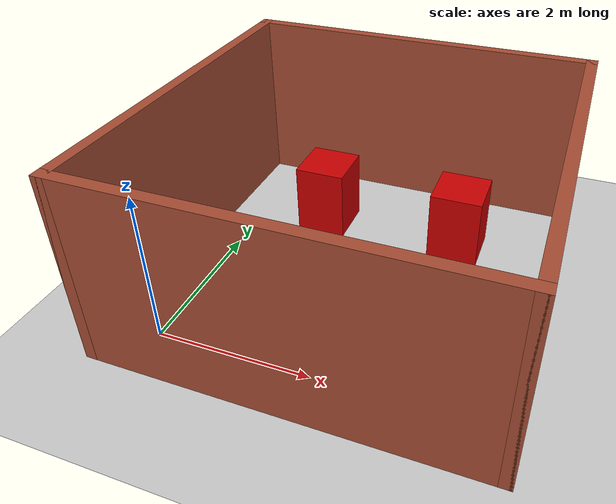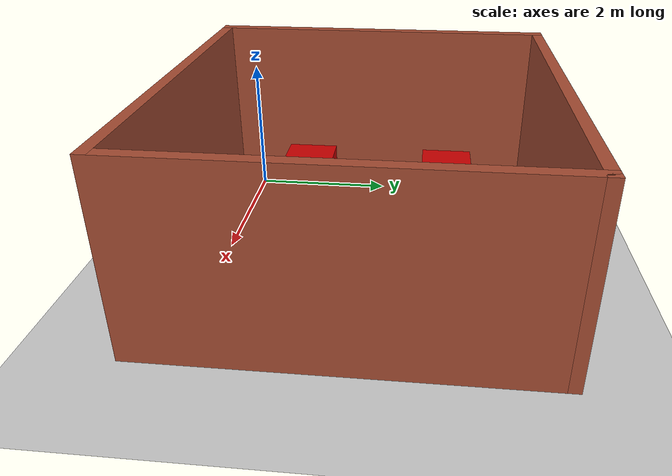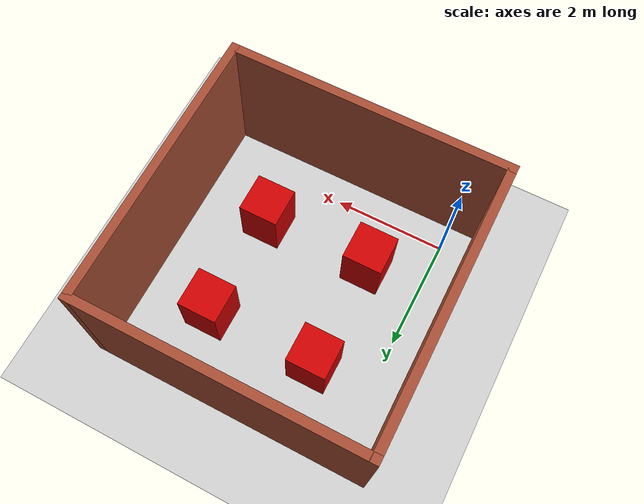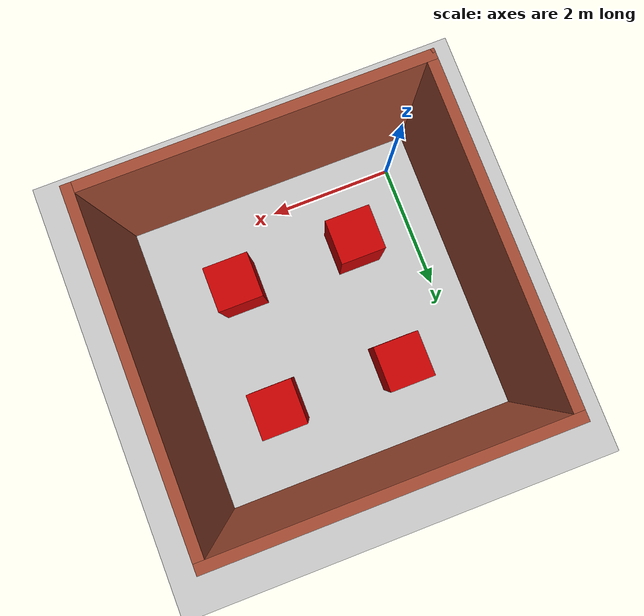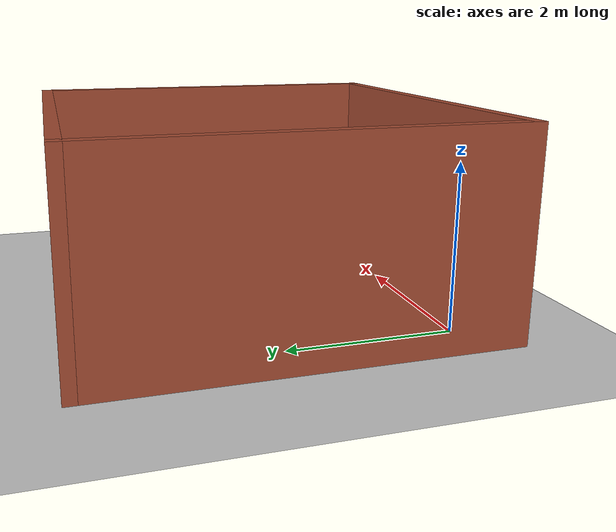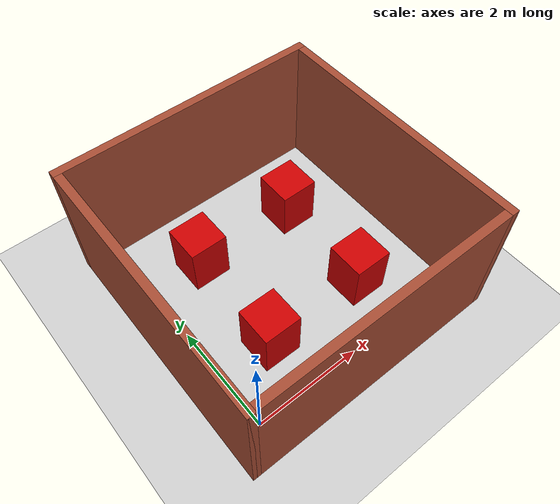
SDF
<sdf version="1.7">
 <world name="default">
  <light name="sun" type="directional">
   <pose>0 0 10 0 -0 0</pose>
   <diffuse>0.8 0.8 0.8 1</diffuse>
   <specular>0.2 0.2 0.2 1</specular>
   <attenuation>
    <range>1000</range>
    <constant>0.9</constant>
    <linear>0.01</linear>
    <quadratic>0.001</quadratic>
   </attenuation>
   <direction>-0.5 0.1 -0.9</direction>
   <spot><inner_angle>0</inner_angle><outer_angle>0</outer_angle><falloff>0</falloff></spot>
  </light>
  <model name="ground_plane">
   <static>1</static>
   <link name="link">
    <collision name="collision">
     <geometry><plane><normal>0 0 1</normal><size>100 100</size></plane></geometry>
     <surface>
      <contact><collide_bitmask>65535</collide_bitmask></contact>
      <friction><ode><mu>100</mu><mu2>50</mu2></ode></friction>
     </surface>
    </collision>
    <visual name="visual">
     <cast_shadows>0</cast_shadows>
     <geometry><plane><normal>0 0 1</normal><size>100 100</size></plane></geometry>
     <material>
      <script><uri>file://media/materials/scripts/gazebo.material</uri><name>Gazebo/Grey</name></script>
     </material>
    </visual>
   </link>
  </model>
  <gravity>0 0 -9.8</gravity>
  <magnetic_field>6e-06 2.3e-05 -4.2e-05</magnetic_field>
  <atmosphere type="adiabatic"/>
  <physics type="ode">
   <max_step_size>0.001</max_step_size>
   <real_time_factor>1</real_time_factor>
   <real_time_update_rate>1000</real_time_update_rate>
  </physics>
  <scene><ambient>0.4 0.4 0.4 1</ambient><background>0.7 0.7 0.7 1</background><shadows>1</shadows></scene>
  <spherical_coordinates>
   <surface_model>EARTH_WGS84</surface_model>
   <latitude_deg>0</latitude_deg>
   <longitude_deg>0</longitude_deg>
   <elevation>0</elevation>
   <heading_deg>0</heading_deg>
  </spherical_coordinates>
  <model name="map1">
   <pose>2.69436 1.88308 0 0 -0 0</pose>
   <link name="Wall_5">
    <collision name="Wall_5_Collision">
     <geometry><box><size>5 0.15 2.5</size></box></geometry>
     <pose>0 0 1.25 0 -0 0</pose>
    </collision>
    <visual name="Wall_5_Visual">
     <pose>0 0 1.25 0 -0 0</pose>
     <geometry><box><size>5 0.15 2.5</size></box></geometry>
     <material>
      <script><uri>file://media/materials/scripts/gazebo.material</uri><name>Gazebo/Bricks</name></script>
      <ambient>1 1 1 1</ambient>
     </material>
     <meta><layer>0</layer></meta>
    </visual>
    <pose>-0.789011 -2.425 0 0 -0 0</pose>
   </link>
   <link name="Wall_6">
    <collision name="Wall_6_Collision">
     <geometry><box><size>5 0.15 2.5</size></box></geometry>
     <pose>0 0 1.25 0 -0 0</pose>
    </collision>
    <visual name="Wall_6_Visual">
     <pose>0 0 1.25 0 -0 0</pose>
     <geometry><box><size>5 0.15 2.5</size></box></geometry>
     <material>
      <script><uri>file://media/materials/scripts/gazebo.material</uri><name>Gazebo/Bricks</name></script>
      <ambient>1 1 1 1</ambient>
     </material>
     <meta><layer>0</layer></meta>
    </visual>
    <pose>1.63599 0 0 0 -0 1.5708</pose>
   </link>
   <link name="Wall_7">
    <collision name="Wall_7_Collision">
     <geometry><box><size>5 0.15 2.5</size></box></geometry>
     <pose>0 0 1.25 0 -0 0</pose>
    </collision>
    <visual name="Wall_7_Visual">
     <pose>0 0 1.25 0 -0 0</pose>
     <geometry><box><size>5 0.15 2.5</size></box></geometry>
     <material>
      <script><uri>file://media/materials/scripts/gazebo.material</uri><name>Gazebo/Bricks</name></script>
      <ambient>1 1 1 1</ambient>
     </material>
     <meta><layer>0</layer></meta>
    </visual>
    <pose>-0.789011 2.425 0 0 -0 3.14159</pose>
   </link>
   <link name="Wall_8">
    <collision name="Wall_8_Collision">
     <geometry><box><size>5 0.15 2.5</size></box></geometry>
     <pose>0 0 1.25 0 -0 0</pose>
    </collision>
    <visual name="Wall_8_Visual">
     <pose>0 0 1.25 0 -0 0</pose>
     <geometry><box><size>5 0.15 2.5</size></box></geometry>
     <material>
      <script><uri>file://media/materials/scripts/gazebo.material</uri><name>Gazebo/Bricks</name></script>
      <ambient>1 1 1 1</ambient>
     </material>
     <meta><layer>0</layer></meta>
    </visual>
    <pose>-3.21401 0 0 0 -0 -1.5708</pose>
   </link>
   <static>1</static>
  </model>
  <model name="unit_box">
   <link name="link">
    <inertial>
     <mass>1</mass>
     <inertia>
      <ixx>0.166667</ixx>
      <ixy>0</ixy>
      <ixz>0</ixz>
      <iyy>0.166667</iyy>
      <iyz>0</iyz>
      <izz>0.166667</izz>
     </inertia>
    </inertial>
    <pose>0.166121 0.134936 0 0 -0 0</pose>
    <visual name="visual">
     <geometry><box><size>0.7 0.7 1</size></box></geometry>
     <material>
      <script><name>Gazebo/Grey</name><uri>file://media/materials/scripts/gazebo.material</uri></script>
      <shader type="pixel"><normal_map>__default__</normal_map></shader>
      <ambient>0.8 0 0 1</ambient>
      <diffuse>0.7 0.7 0.7 1</diffuse>
      <specular>0.01 0.01 0.01 1</specular>
      <emissive>0 0 0 1</emissive>
     </material>
    </visual>
    <collision name="collision">
     <geometry><box><size>0.02 0.02 1</size></box></geometry>
     <surface>
      <friction>
       <ode><mu>1</mu><mu2>1</mu2><fdir1>0 0 0</fdir1><slip1>0</slip1><slip2>0</slip2></ode>
       <torsional>
        <coefficient>1</coefficient>
        <patch_radius>0</patch_radius>
        <surface_radius>0</surface_radius>
        <use_patch_radius>1</use_patch_radius>
        <ode><slip>0</slip></ode>
       </torsional>
      </friction>
      <bounce><restitution_coefficient>0</restitution_coefficient><threshold>1e+06</threshold></bounce>
      <contact>
       <collide_without_contact>0</collide_without_contact>
       <collide_without_contact_bitmask>1</collide_without_contact_bitmask>
       <collide_bitmask>1</collide_bitmask>
       <ode>
        <soft_cfm>0</soft_cfm>
        <soft_erp>0.2</soft_erp>
        <kp>1e+13</kp>
        <kd>1</kd>
        <max_vel>0.01</max_vel>
        <min_depth>0</min_depth>
       </ode>
       <bullet>
        <split_impulse>1</split_impulse>
        <split_impulse_penetration_threshold>-0.01</split_impulse_penetration_threshold>
        <soft_cfm>0</soft_cfm>
        <soft_erp>0.2</soft_erp>
        <kp>1e+13</kp>
        <kd>1</kd>
       </bullet>
      </contact>
     </surface>
    </collision>
   </link>
   <link name="link_clone">
    <inertial>
     <mass>1</mass>
     <inertia>
      <ixx>0.166667</ixx>
      <ixy>0</ixy>
      <ixz>0</ixz>
      <iyy>0.166667</iyy>
      <iyz>0</iyz>
      <izz>0.166667</izz>
     </inertia>
    </inertial>
    <pose>0.119933 -1.83804 0 -0 -0 -0</pose>
    <visual name="visual">
     <geometry><box><size>0.7 0.7 1</size></box></geometry>
     <material>
      <script><name>Gazebo/Grey</name><uri>file://media/materials/scripts/gazebo.material</uri></script>
      <shader type="pixel"><normal_map>__default__</normal_map></shader>
      <ambient>0.8 0 0 1</ambient>
      <diffuse>0.7 0.7 0.7 1</diffuse>
      <specular>0.01 0.01 0.01 1</specular>
      <emissive>0 0 0 1</emissive>
     </material>
    </visual>
    <collision name="collision">
     <geometry><box><size>0.02 0.02 1</size></box></geometry>
     <surface>
      <friction>
       <ode><mu>1</mu><mu2>1</mu2><fdir1>0 0 0</fdir1><slip1>0</slip1><slip2>0</slip2></ode>
       <torsional>
        <coefficient>1</coefficient>
        <patch_radius>0</patch_radius>
        <surface_radius>0</surface_radius>
        <use_patch_radius>1</use_patch_radius>
        <ode><slip>0</slip></ode>
       </torsional>
      </friction>
      <bounce><restitution_coefficient>0</restitution_coefficient><threshold>1e+06</threshold></bounce>
      <contact>
       <collide_without_contact>0</collide_without_contact>
       <collide_without_contact_bitmask>1</collide_without_contact_bitmask>
       <collide_bitmask>1</collide_bitmask>
       <ode>
        <soft_cfm>0</soft_cfm>
        <soft_erp>0.2</soft_erp>
        <kp>1e+13</kp>
        <kd>1</kd>
        <max_vel>0.01</max_vel>
        <min_depth>0</min_depth>
       </ode>
       <bullet>
        <split_impulse>1</split_impulse>
        <split_impulse_penetration_threshold>-0.01</split_impulse_penetration_threshold>
        <soft_cfm>0</soft_cfm>
        <soft_erp>0.2</soft_erp>
        <kp>1e+13</kp>
        <kd>1</kd>
       </bullet>
      </contact>
     </surface>
    </collision>
   </link>
   <link name="link_clone_0">
    <inertial>
     <mass>1</mass>
     <inertia>
      <ixx>0.166667</ixx>
      <ixy>0</ixy>
      <ixz>0</ixz>
      <iyy>0.166667</iyy>
      <iyz>0</iyz>
      <izz>0.166667</izz>
     </inertia>
    </inertial>
    <pose>-1.8119 0.1502 -0 -0 -0 -0</pose>
    <visual name="visual">
     <geometry><box><size>0.7 0.7 1</size></box></geometry>
     <material>
      <script><name>Gazebo/Grey</name><uri>file://media/materials/scripts/gazebo.material</uri></script>
      <shader type="pixel"><normal_map>__default__</normal_map></shader>
      <ambient>0.8 0 0 1</ambient>
      <diffuse>0.7 0.7 0.7 1</diffuse>
      <specular>0.01 0.01 0.01 1</specular>
      <emissive>0 0 0 1</emissive>
     </material>
    </visual>
    <collision name="collision">
     <geometry><box><size>0.02 0.02 1</size></box></geometry>
     <surface>
      <friction>
       <ode><mu>1</mu><mu2>1</mu2><fdir1>0 0 0</fdir1><slip1>0</slip1><slip2>0</slip2></ode>
       <torsional>
        <coefficient>1</coefficient>
        <patch_radius>0</patch_radius>
        <surface_radius>0</surface_radius>
        <use_patch_radius>1</use_patch_radius>
        <ode><slip>0</slip></ode>
       </torsional>
      </friction>
      <bounce><restitution_coefficient>0</restitution_coefficient><threshold>1e+06</threshold></bounce>
      <contact>
       <collide_without_contact>0</collide_without_contact>
       <collide_without_contact_bitmask>1</collide_without_contact_bitmask>
       <collide_bitmask>1</collide_bitmask>
       <ode>
        <soft_cfm>0</soft_cfm>
        <soft_erp>0.2</soft_erp>
        <kp>1e+13</kp>
        <kd>1</kd>
        <max_vel>0.01</max_vel>
        <min_depth>0</min_depth>
       </ode>
       <bullet>
        <split_impulse>1</split_impulse>
        <split_impulse_penetration_threshold>-0.01</split_impulse_penetration_threshold>
        <soft_cfm>0</soft_cfm>
        <soft_erp>0.2</soft_erp>
        <kp>1e+13</kp>
        <kd>1</kd>
       </bullet>
      </contact>
     </surface>
    </collision>
   </link>
   <link name="link_clone_1">
    <inertial>
     <mass>1</mass>
     <inertia>
      <ixx>0.166667</ixx>
      <ixy>0</ixy>
      <ixz>0</ixz>
      <iyy>0.166667</iyy>
      <iyz>0</iyz>
      <izz>0.166667</izz>
     </inertia>
    </inertial>
    <pose>-1.82744 -1.85527 -0 -0 -0 -0</pose>
    <visual name="visual">
     <geometry><box><size>0.7 0.7 1</size></box></geometry>
     <material>
      <script><name>Gazebo/Grey</name><uri>file://media/materials/scripts/gazebo.material</uri></script>
      <shader type="pixel"><normal_map>__default__</normal_map></shader>
      <ambient>0.8 0 0 1</ambient>
      <diffuse>0.7 0.7 0.7 1</diffuse>
      <specular>0.01 0.01 0.01 1</specular>
      <emissive>0 0 0 1</emissive>
     </material>
    </visual>
    <collision name="collision">
     <geometry><box><size>0.02 0.02 1</size></box></geometry>
     <surface>
      <friction>
       <ode><mu>1</mu><mu2>1</mu2><fdir1>0 0 0</fdir1><slip1>0</slip1><slip2>0</slip2></ode>
       <torsional>
        <coefficient>1</coefficient>
        <patch_radius>0</patch_radius>
        <surface_radius>0</surface_radius>
        <use_patch_radius>1</use_patch_radius>
        <ode><slip>0</slip></ode>
       </torsional>
      </friction>
      <bounce><restitution_coefficient>0</restitution_coefficient><threshold>1e+06</threshold></bounce>
      <contact>
       <collide_without_contact>0</collide_without_contact>
       <collide_without_contact_bitmask>1</collide_without_contact_bitmask>
       <collide_bitmask>1</collide_bitmask>
       <ode>
        <soft_cfm>0</soft_cfm>
        <soft_erp>0.2</soft_erp>
        <kp>1e+13</kp>
        <kd>1</kd>
        <max_vel>0.01</max_vel>
        <min_depth>0</min_depth>
       </ode>
       <bullet>
        <split_impulse>1</split_impulse>
        <split_impulse_penetration_threshold>-0.01</split_impulse_penetration_threshold>
        <soft_cfm>0</soft_cfm>
        <soft_erp>0.2</soft_erp>
        <kp>1e+13</kp>
        <kd>1</kd>
       </bullet>
      </contact>
     </surface>
    </collision>
   </link>
   <static>0</static>
   <pose>2.8257 2.83927 0.5 0 -0 0</pose>
  </model>
 </world>
</sdf>
